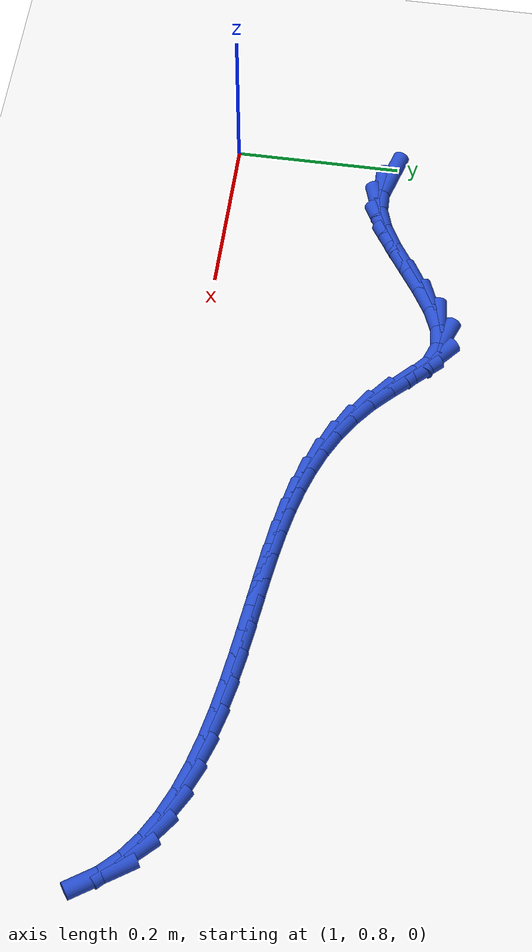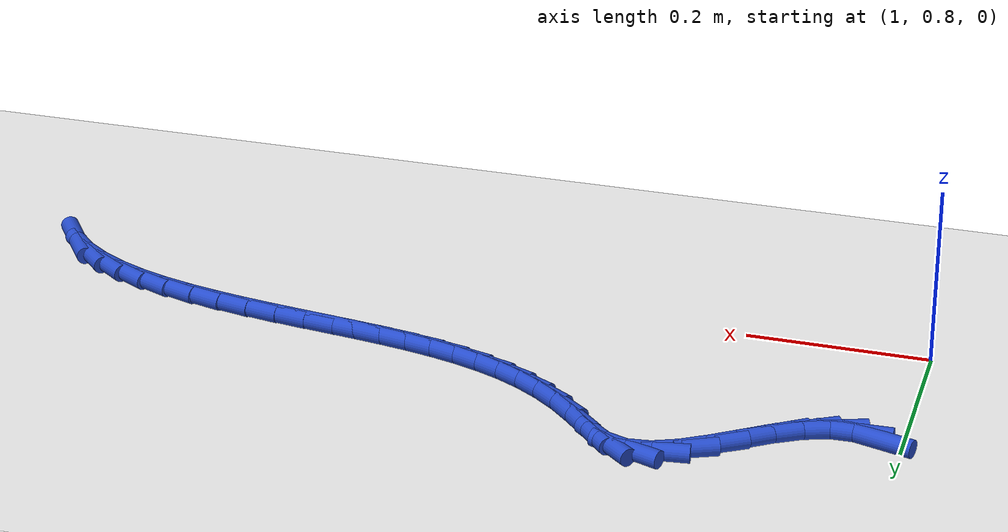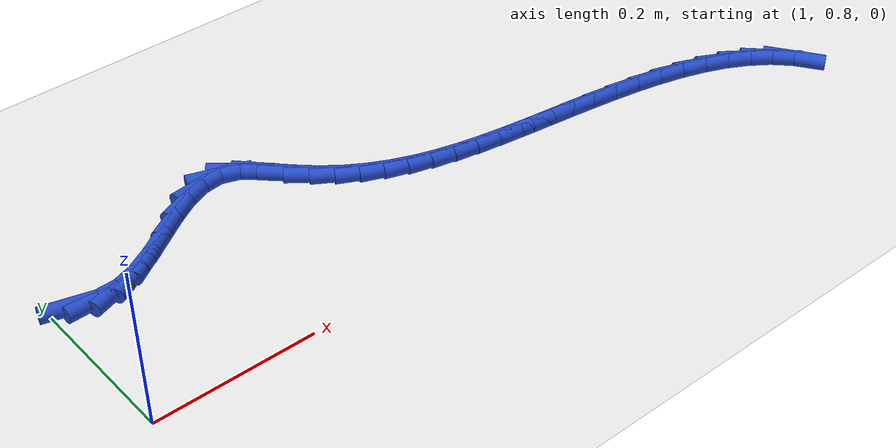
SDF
<sdf version="1.6">
 <world name="default">
  <model name="ground_plane">
   <static>1</static>
   <link name="link">
    <collision name="collision">
     <geometry><plane><normal>0 0 1</normal><size>100 100</size></plane></geometry>
     <surface><friction><ode><mu>100</mu><mu2>50</mu2></ode></friction></surface>
    </collision>
    <visual name="visual">
     <cast_shadows>0</cast_shadows>
     <geometry><plane><normal>0 0 1</normal><size>100 100</size></plane></geometry>
     <material>
      <script><uri>file://media/materials/scripts/gazebo.material</uri><name>Gazebo/WhiteGlow</name></script>
     </material>
    </visual>
   </link>
  </model>
  <model name="line">
   <link name="link_62">
    <pose>1.025390462640082 0.9921353804231121 0.01 0 1.57 -0.27216547448522604</pose>
    <collision name="collision">
     <geometry><cylinder><radius>0.01</radius><length>0.08</length></cylinder></geometry>
    </collision>
    <visual name="visual">
     <material>
      <script><name>Gazebo/Blue</name><uri>file://media/materials/scripts/gazebo.material</uri></script>
     </material>
     <geometry><cylinder><radius>0.01</radius><length>0.08</length></cylinder></geometry>
    </visual>
   </link>
   <link name="link_63">
    <pose>1.0496311201947006 0.985370034054207 0.01 0 1.57 0.024603907276591834</pose>
    <collision name="collision">
     <geometry><cylinder><radius>0.01</radius><length>0.08</length></cylinder></geometry>
    </collision>
    <visual name="visual">
     <material>
      <script><name>Gazebo/Blue</name><uri>file://media/materials/scripts/gazebo.material</uri></script>
     </material>
     <geometry><cylinder><radius>0.01</radius><length>0.08</length></cylinder></geometry>
    </visual>
   </link>
   <link name="link_64">
    <pose>1.0750235935907315 0.9859949142111255 0.01 0 1.57 0.3192370790498513</pose>
    <collision name="collision">
     <geometry><cylinder><radius>0.01</radius><length>0.08</length></cylinder></geometry>
    </collision>
    <visual name="visual">
     <material>
      <script><name>Gazebo/Blue</name><uri>file://media/materials/scripts/gazebo.material</uri></script>
     </material>
     <geometry><cylinder><radius>0.01</radius><length>0.08</length></cylinder></geometry>
    </visual>
   </link>
   <link name="link_65">
    <pose>1.101796402133849 0.9948444763884836 0.01 0 1.57 0.4994906150765822</pose>
    <collision name="collision">
     <geometry><cylinder><radius>0.01</radius><length>0.08</length></cylinder></geometry>
    </collision>
    <visual name="visual">
     <material>
      <script><name>Gazebo/Blue</name><uri>file://media/materials/scripts/gazebo.material</uri></script>
     </material>
     <geometry><cylinder><radius>0.01</radius><length>0.08</length></cylinder></geometry>
    </visual>
   </link>
   <link name="link_66">
    <pose>1.1296540316333232 1.0100447485819546 0.01 0 1.57 0.5793380476691669</pose>
    <collision name="collision">
     <geometry><cylinder><radius>0.01</radius><length>0.08</length></cylinder></geometry>
    </collision>
    <visual name="visual">
     <material>
      <script><name>Gazebo/Blue</name><uri>file://media/materials/scripts/gazebo.material</uri></script>
     </material>
     <geometry><cylinder><radius>0.01</radius><length>0.08</length></cylinder></geometry>
    </visual>
   </link>
   <link name="link_67">
    <pose>1.1580937258659083 1.0286506440137233 0.01 0 1.57 0.5892507064706672</pose>
    <collision name="collision">
     <geometry><cylinder><radius>0.01</radius><length>0.08</length></cylinder></geometry>
    </collision>
    <visual name="visual">
     <material>
      <script><name>Gazebo/Blue</name><uri>file://media/materials/scripts/gazebo.material</uri></script>
     </material>
     <geometry><cylinder><radius>0.01</radius><length>0.08</length></cylinder></geometry>
    </visual>
   </link>
   <link name="link_68">
    <pose>1.1866122161454762 1.0477144272803147 0.01 0 1.57 0.5329935872585462</pose>
    <collision name="collision">
     <geometry><cylinder><radius>0.01</radius><length>0.08</length></cylinder></geometry>
    </collision>
    <visual name="visual">
     <material>
      <script><name>Gazebo/Blue</name><uri>file://media/materials/scripts/gazebo.material</uri></script>
     </material>
     <geometry><cylinder><radius>0.01</radius><length>0.08</length></cylinder></geometry>
    </visual>
   </link>
   <link name="link_69">
    <pose>1.2147062337858978 1.0642883629782538 0.01 0 1.57 0.3890398582765149</pose>
    <collision name="collision">
     <geometry><cylinder><radius>0.01</radius><length>0.08</length></cylinder></geometry>
    </collision>
    <visual name="visual">
     <material>
      <script><name>Gazebo/Blue</name><uri>file://media/materials/scripts/gazebo.material</uri></script>
     </material>
     <geometry><cylinder><radius>0.01</radius><length>0.08</length></cylinder></geometry>
    </visual>
   </link>
   <link name="link_70">
    <pose>1.2418725101010437 1.0754247157040653 0.01 0 1.57 0.10649304468396537</pose>
    <collision name="collision">
     <geometry><cylinder><radius>0.01</radius><length>0.08</length></cylinder></geometry>
    </collision>
    <visual name="visual">
     <material>
      <script><name>Gazebo/Blue</name><uri>file://media/materials/scripts/gazebo.material</uri></script>
     </material>
     <geometry><cylinder><radius>0.01</radius><length>0.08</length></cylinder></geometry>
    </visual>
   </link>
   <link name="link_71">
    <pose>1.2676077764047866 1.0781757500542746 0.01 0 1.57 -0.34252006664495893</pose>
    <collision name="collision">
     <geometry><cylinder><radius>0.01</radius><length>0.08</length></cylinder></geometry>
    </collision>
    <visual name="visual">
     <material>
      <script><name>Gazebo/Blue</name><uri>file://media/materials/scripts/gazebo.material</uri></script>
     </material>
     <geometry><cylinder><radius>0.01</radius><length>0.08</length></cylinder></geometry>
    </visual>
   </link>
   <link name="link_72">
    <pose>1.2914257842902765 1.0696828482767677 0.01 0 1.57 -0.7044989865022698</pose>
    <collision name="collision">
     <geometry><cylinder><radius>0.01</radius><length>0.08</length></cylinder></geometry>
    </collision>
    <visual name="visual">
     <material>
      <script><name>Gazebo/Blue</name><uri>file://media/materials/scripts/gazebo.material</uri></script>
     </material>
     <geometry><cylinder><radius>0.01</radius><length>0.08</length></cylinder></geometry>
    </visual>
   </link>
   <link name="link_73">
    <pose>1.313562100103759 1.0508667921497115 0.01 0 1.57 -0.8178600807181006</pose>
    <collision name="collision">
     <geometry><cylinder><radius>0.01</radius><length>0.08</length></cylinder></geometry>
    </collision>
    <visual name="visual">
     <material>
      <script><name>Gazebo/Blue</name><uri>file://media/materials/scripts/gazebo.material</uri></script>
     </material>
     <geometry><cylinder><radius>0.01</radius><length>0.08</length></cylinder></geometry>
    </visual>
   </link>
   <link name="link_74">
    <pose>1.3352263162757307 1.0277483336437991 0.01 0 1.57 -0.767894495921189</pose>
    <collision name="collision">
     <geometry><cylinder><radius>0.01</radius><length>0.08</length></cylinder></geometry>
    </collision>
    <visual name="visual">
     <material>
      <script><name>Gazebo/Blue</name><uri>file://media/materials/scripts/gazebo.material</uri></script>
     </material>
     <geometry><cylinder><radius>0.01</radius><length>0.08</length></cylinder></geometry>
    </visual>
   </link>
   <link name="link_75">
    <pose>1.3575890829991197 1.0061550378077022 0.01 0 1.57 -0.6672115155380971</pose>
    <collision name="collision">
     <geometry><cylinder><radius>0.01</radius><length>0.08</length></cylinder></geometry>
    </collision>
    <visual name="visual">
     <material>
      <script><name>Gazebo/Blue</name><uri>file://media/materials/scripts/gazebo.material</uri></script>
     </material>
     <geometry><cylinder><radius>0.01</radius><length>0.08</length></cylinder></geometry>
    </visual>
   </link>
   <link name="link_76">
    <pose>1.381002803991551 0.9877114540299087 0.01 0 1.57 -0.567979392355338</pose>
    <collision name="collision">
     <geometry><cylinder><radius>0.01</radius><length>0.08</length></cylinder></geometry>
    </collision>
    <visual name="visual">
     <material>
      <script><name>Gazebo/Blue</name><uri>file://media/materials/scripts/gazebo.material</uri></script>
     </material>
     <geometry><cylinder><radius>0.01</radius><length>0.08</length></cylinder></geometry>
    </visual>
   </link>
   <link name="link_77">
    <pose>1.4054446295705325 0.972114600123948 0.01 0 1.57 -0.47429919983843766</pose>
    <collision name="collision">
     <geometry><cylinder><radius>0.01</radius><length>0.08</length></cylinder></geometry>
    </collision>
    <visual name="visual">
     <material>
      <script><name>Gazebo/Blue</name><uri>file://media/materials/scripts/gazebo.material</uri></script>
     </material>
     <geometry><cylinder><radius>0.01</radius><length>0.08</length></cylinder></geometry>
    </visual>
   </link>
   <link name="link_78">
    <pose>1.430889749707455 0.9590514243635814 0.01 0 1.57 -0.38938462012725905</pose>
    <collision name="collision">
     <geometry><cylinder><radius>0.01</radius><length>0.08</length></cylinder></geometry>
    </collision>
    <visual name="visual">
     <material>
      <script><name>Gazebo/Blue</name><uri>file://media/materials/scripts/gazebo.material</uri></script>
     </material>
     <geometry><cylinder><radius>0.01</radius><length>0.08</length></cylinder></geometry>
    </visual>
   </link>
   <link name="link_79">
    <pose>1.4573133543737107 0.9482088750225698 0.01 0 1.57 -0.3154656337574325</pose>
    <collision name="collision">
     <geometry><cylinder><radius>0.01</radius><length>0.08</length></cylinder></geometry>
    </collision>
    <visual name="visual">
     <material>
      <script><name>Gazebo/Blue</name><uri>file://media/materials/scripts/gazebo.material</uri></script>
     </material>
     <geometry><cylinder><radius>0.01</radius><length>0.08</length></cylinder></geometry>
    </visual>
   </link>
   <link name="link_80">
    <pose>1.4846906335406898 0.9392739003746751 0.01 0 1.57 -0.25373440383390977</pose>
    <collision name="collision">
     <geometry><cylinder><radius>0.01</radius><length>0.08</length></cylinder></geometry>
    </collision>
    <visual name="visual">
     <material>
      <script><name>Gazebo/Blue</name><uri>file://media/materials/scripts/gazebo.material</uri></script>
     </material>
     <geometry><cylinder><radius>0.01</radius><length>0.08</length></cylinder></geometry>
    </visual>
   </link>
   <link name="link_81">
    <pose>1.5129967771797848 0.9319334486936575 0.01 0 1.57 -0.20452649102647338</pose>
    <collision name="collision">
     <geometry><cylinder><radius>0.01</radius><length>0.08</length></cylinder></geometry>
    </collision>
    <visual name="visual">
     <material>
      <script><name>Gazebo/Blue</name><uri>file://media/materials/scripts/gazebo.material</uri></script>
     </material>
     <geometry><cylinder><radius>0.01</radius><length>0.08</length></cylinder></geometry>
    </visual>
   </link>
   <link name="link_82">
    <pose>1.542206975262387 0.9258744682532788 0.01 0 1.57 -0.16759402009441632</pose>
    <collision name="collision">
     <geometry><cylinder><radius>0.01</radius><length>0.08</length></cylinder></geometry>
    </collision>
    <visual name="visual">
     <material>
      <script><name>Gazebo/Blue</name><uri>file://media/materials/scripts/gazebo.material</uri></script>
     </material>
     <geometry><cylinder><radius>0.01</radius><length>0.08</length></cylinder></geometry>
    </visual>
   </link>
   <link name="link_83">
    <pose>1.5722964177598866 0.9207839073273001 0.01 0 1.57 -0.14236065392008074</pose>
    <collision name="collision">
     <geometry><cylinder><radius>0.01</radius><length>0.08</length></cylinder></geometry>
    </collision>
    <visual name="visual">
     <material>
      <script><name>Gazebo/Blue</name><uri>file://media/materials/scripts/gazebo.material</uri></script>
     </material>
     <geometry><cylinder><radius>0.01</radius><length>0.08</length></cylinder></geometry>
    </visual>
   </link>
   <link name="link_84">
    <pose>1.6032402946436761 0.9163487141894827 0.01 0 1.57 -0.12810870169607494</pose>
    <collision name="collision">
     <geometry><cylinder><radius>0.01</radius><length>0.08</length></cylinder></geometry>
    </collision>
    <visual name="visual">
     <material>
      <script><name>Gazebo/Blue</name><uri>file://media/materials/scripts/gazebo.material</uri></script>
     </material>
     <geometry><cylinder><radius>0.01</radius><length>0.08</length></cylinder></geometry>
    </visual>
   </link>
   <link name="link_85">
    <pose>1.6350137958851463 0.9122558371135878 0.01 0 1.57 -0.1240927496140068</pose>
    <collision name="collision">
     <geometry><cylinder><radius>0.01</radius><length>0.08</length></cylinder></geometry>
    </collision>
    <visual name="visual">
     <material>
      <script><name>Gazebo/Blue</name><uri>file://media/materials/scripts/gazebo.material</uri></script>
     </material>
     <geometry><cylinder><radius>0.01</radius><length>0.08</length></cylinder></geometry>
    </visual>
   </link>
   <link name="link_86">
    <pose>1.6675921114556886 0.9081922243733762 0.01 0 1.57 -0.12959455044781856</pose>
    <collision name="collision">
     <geometry><cylinder><radius>0.01</radius><length>0.08</length></cylinder></geometry>
    </collision>
    <visual name="visual">
     <material>
      <script><name>Gazebo/Blue</name><uri>file://media/materials/scripts/gazebo.material</uri></script>
     </material>
     <geometry><cylinder><radius>0.01</radius><length>0.08</length></cylinder></geometry>
    </visual>
   </link>
   <link name="link_87">
    <pose>1.7009502176687368 0.9038448305073431 0.01 0 1.57 -0.14434931651192298</pose>
    <collision name="collision">
     <geometry><cylinder><radius>0.01</radius><length>0.08</length></cylinder></geometry>
    </collision>
    <visual name="visual">
     <material>
      <script><name>Gazebo/Blue</name><uri>file://media/materials/scripts/gazebo.material</uri></script>
     </material>
     <geometry><cylinder><radius>0.01</radius><length>0.08</length></cylinder></geometry>
    </visual>
   </link>
   <link name="link_88">
    <pose>1.7349386659117787 0.8989042583570214 0.01 0 1.57 -0.16925124304775102</pose>
    <collision name="collision">
     <geometry><cylinder><radius>0.01</radius><length>0.08</length></cylinder></geometry>
    </collision>
    <visual name="visual">
     <material>
      <script><name>Gazebo/Blue</name><uri>file://media/materials/scripts/gazebo.material</uri></script>
     </material>
     <geometry><cylinder><radius>0.01</radius><length>0.08</length></cylinder></geometry>
    </visual>
   </link>
   <link name="link_89">
    <pose>1.7690747056437293 0.8930708836163654 0.01 0 1.57 -0.205220349309131</pose>
    <collision name="collision">
     <geometry><cylinder><radius>0.01</radius><length>0.08</length></cylinder></geometry>
    </collision>
    <visual name="visual">
     <material>
      <script><name>Gazebo/Blue</name><uri>file://media/materials/scripts/gazebo.material</uri></script>
     </material>
     <geometry><cylinder><radius>0.01</radius><length>0.08</length></cylinder></geometry>
    </visual>
   </link>
   <link name="link_90">
    <pose>1.8028203636597973 0.8860467011807102 0.01 0 1.57 -0.2538113018350554</pose>
    <collision name="collision">
     <geometry><cylinder><radius>0.01</radius><length>0.08</length></cylinder></geometry>
    </collision>
    <visual name="visual">
     <material>
      <script><name>Gazebo/Blue</name><uri>file://media/materials/scripts/gazebo.material</uri></script>
     </material>
     <geometry><cylinder><radius>0.01</radius><length>0.08</length></cylinder></geometry>
    </visual>
   </link>
   <link name="link_91">
    <pose>1.835637666755191 0.8775337059453902 0.01 0 1.57 -0.31742356938971256</pose>
    <collision name="collision">
     <geometry><cylinder><radius>0.01</radius><length>0.08</length></cylinder></geometry>
    </collision>
    <visual name="visual">
     <material>
      <script><name>Gazebo/Blue</name><uri>file://media/materials/scripts/gazebo.material</uri></script>
     </material>
     <geometry><cylinder><radius>0.01</radius><length>0.08</length></cylinder></geometry>
    </visual>
   </link>
   <link name="link_92">
    <pose>1.8669886417251207 0.8672338928057398 0.01 0 1.57 -0.3993367093988905</pose>
    <collision name="collision">
     <geometry><cylinder><radius>0.01</radius><length>0.08</length></cylinder></geometry>
    </collision>
    <visual name="visual">
     <material>
      <script><name>Gazebo/Blue</name><uri>file://media/materials/scripts/gazebo.material</uri></script>
     </material>
     <geometry><cylinder><radius>0.01</radius><length>0.08</length></cylinder></geometry>
    </visual>
   </link>
   <link name="link_93">
    <pose>1.8963353153647948 0.8548492566570942 0.01 0 1.57 -0.5035602809829538</pose>
    <collision name="collision">
     <geometry><cylinder><radius>0.01</radius><length>0.08</length></cylinder></geometry>
    </collision>
    <visual name="visual">
     <material>
      <script><name>Gazebo/Blue</name><uri>file://media/materials/scripts/gazebo.material</uri></script>
     </material>
     <geometry><cylinder><radius>0.01</radius><length>0.08</length></cylinder></geometry>
    </visual>
   </link>
   <link name="link_94">
    <pose>1.923139714469422 0.8400817923947873 0.01 0 1.57 -0.6341340223990306</pose>
    <collision name="collision">
     <geometry><cylinder><radius>0.01</radius><length>0.08</length></cylinder></geometry>
    </collision>
    <visual name="visual">
     <material>
      <script><name>Gazebo/Blue</name><uri>file://media/materials/scripts/gazebo.material</uri></script>
     </material>
     <geometry><cylinder><radius>0.01</radius><length>0.08</length></cylinder></geometry>
    </visual>
   </link>
   <link name="link_95">
    <pose>1.946863865834211 0.8226334949141543 0.01 0 1.57 -0.7933225246644975</pose>
    <collision name="collision">
     <geometry><cylinder><radius>0.01</radius><length>0.08</length></cylinder></geometry>
    </collision>
    <visual name="visual">
     <material>
      <script><name>Gazebo/Blue</name><uri>file://media/materials/scripts/gazebo.material</uri></script>
     </material>
     <geometry><cylinder><radius>0.01</radius><length>0.08</length></cylinder></geometry>
    </visual>
   </link>
   <link name="link_96">
    <pose>1.9669697962543715 0.8022063591105294 0.01 0 1.57 -0.9785102399912128</pose>
    <collision name="collision">
     <geometry><cylinder><radius>0.01</radius><length>0.08</length></cylinder></geometry>
    </collision>
    <visual name="visual">
     <material>
      <script><name>Gazebo/Blue</name><uri>file://media/materials/scripts/gazebo.material</uri></script>
     </material>
     <geometry><cylinder><radius>0.01</radius><length>0.08</length></cylinder></geometry>
    </visual>
   </link>
  </model>
 </world>
</sdf>
